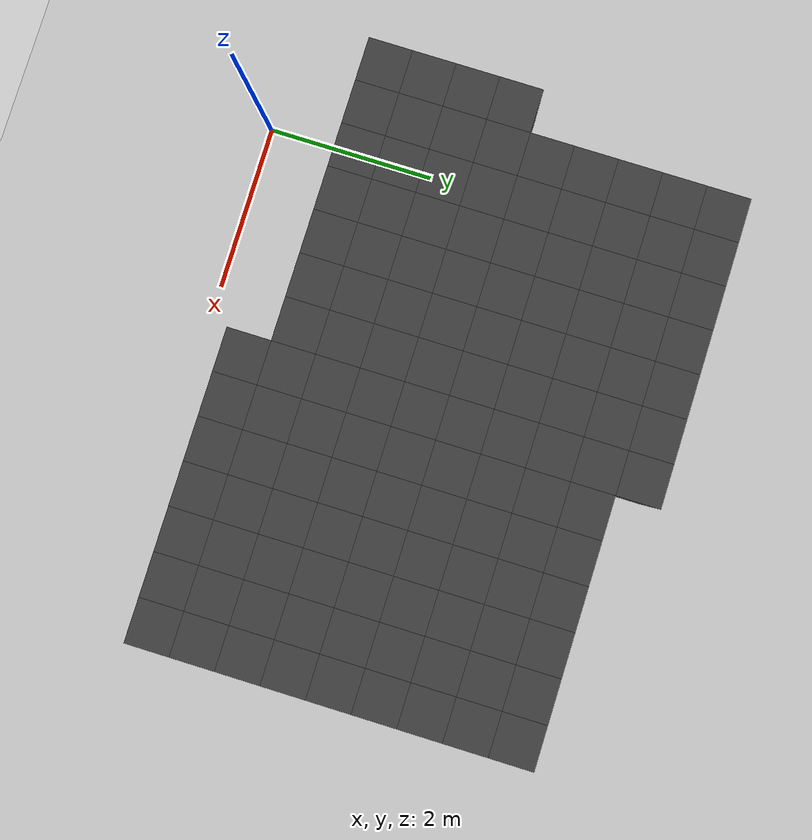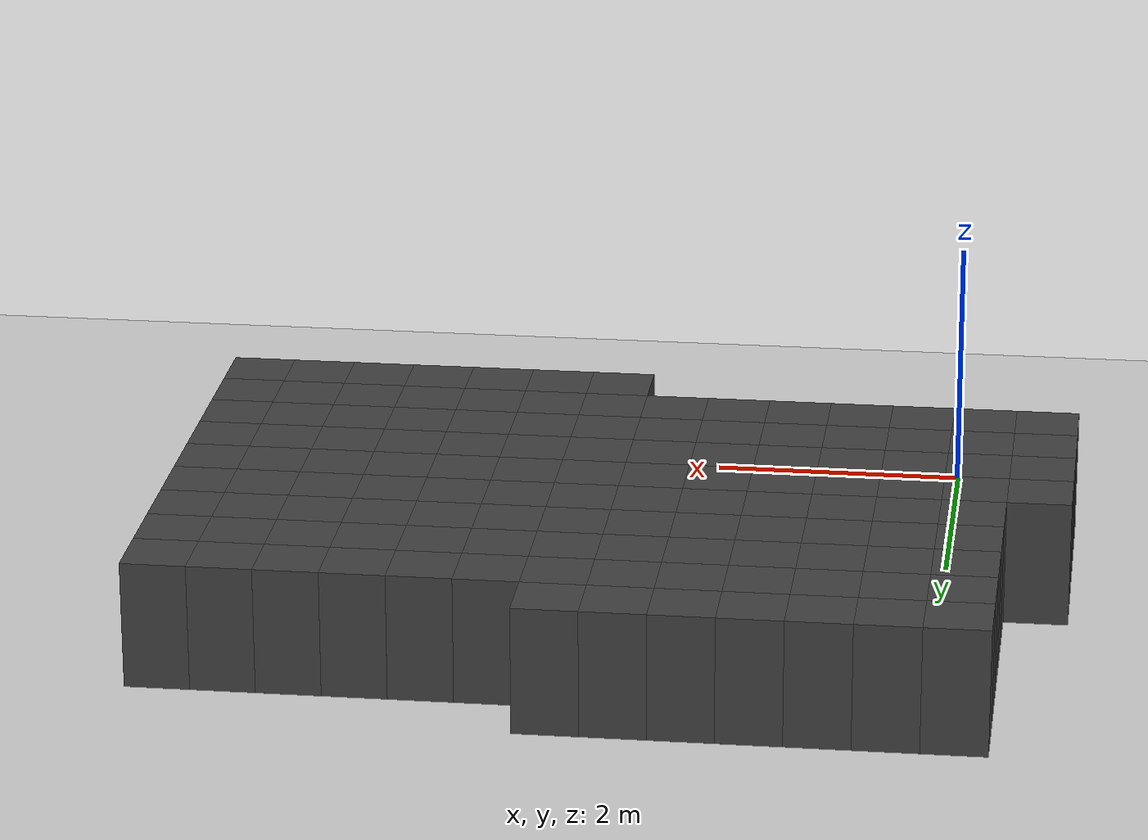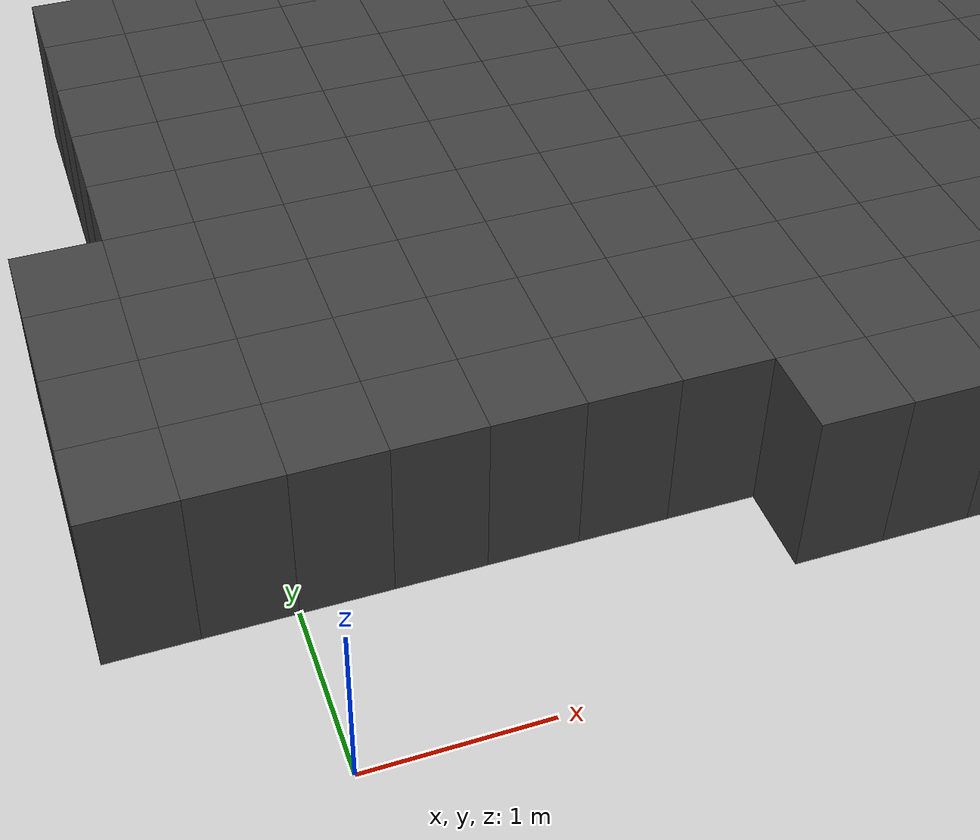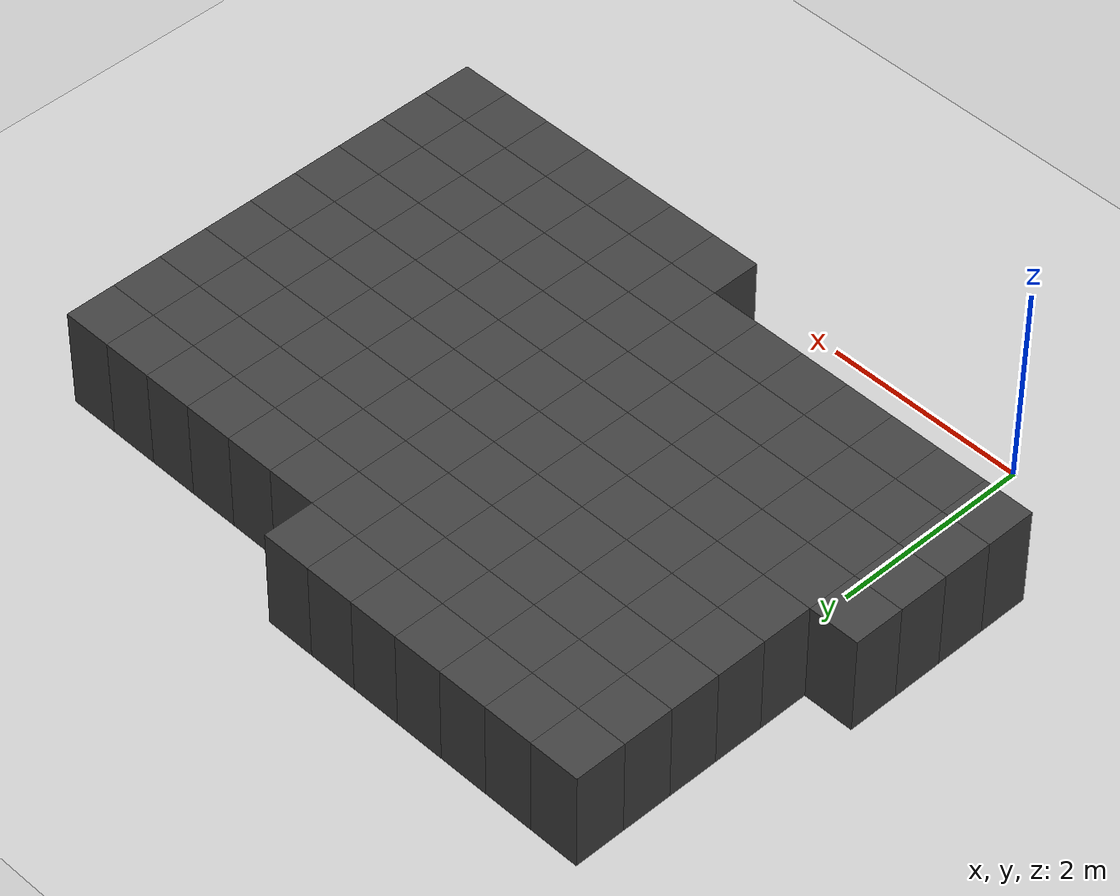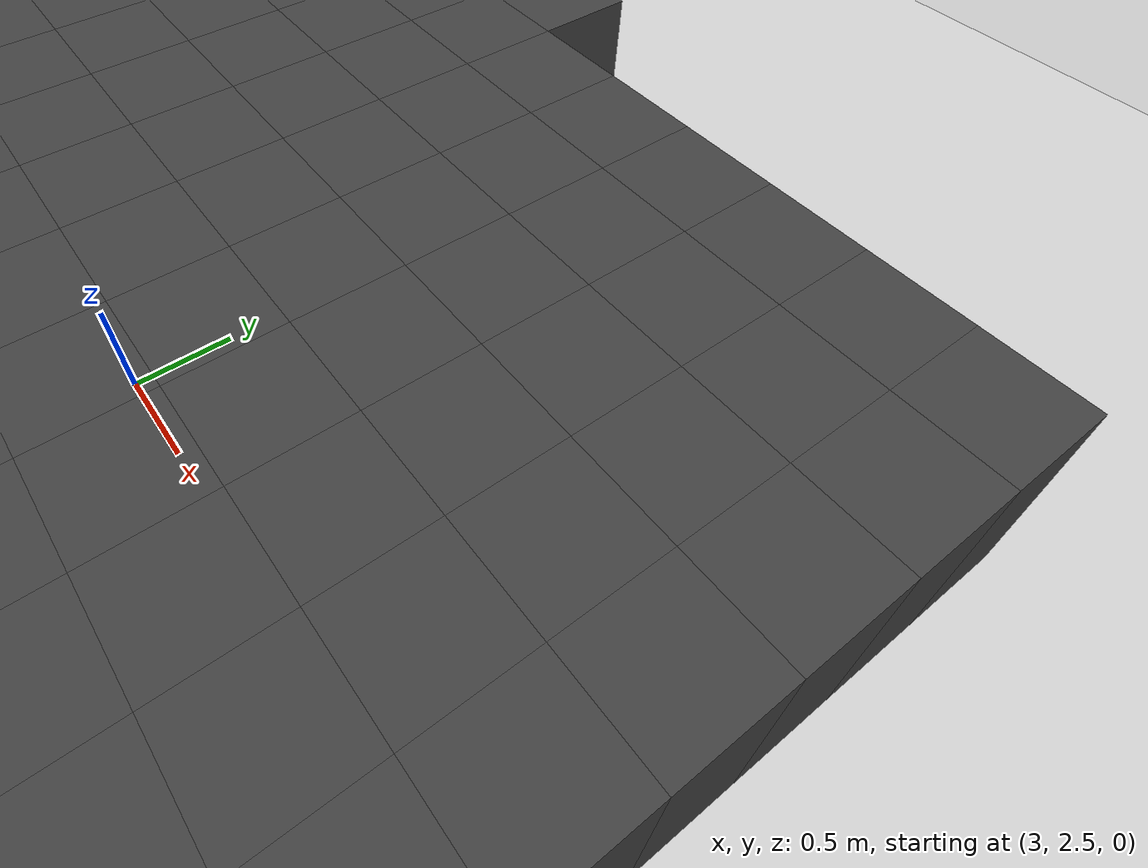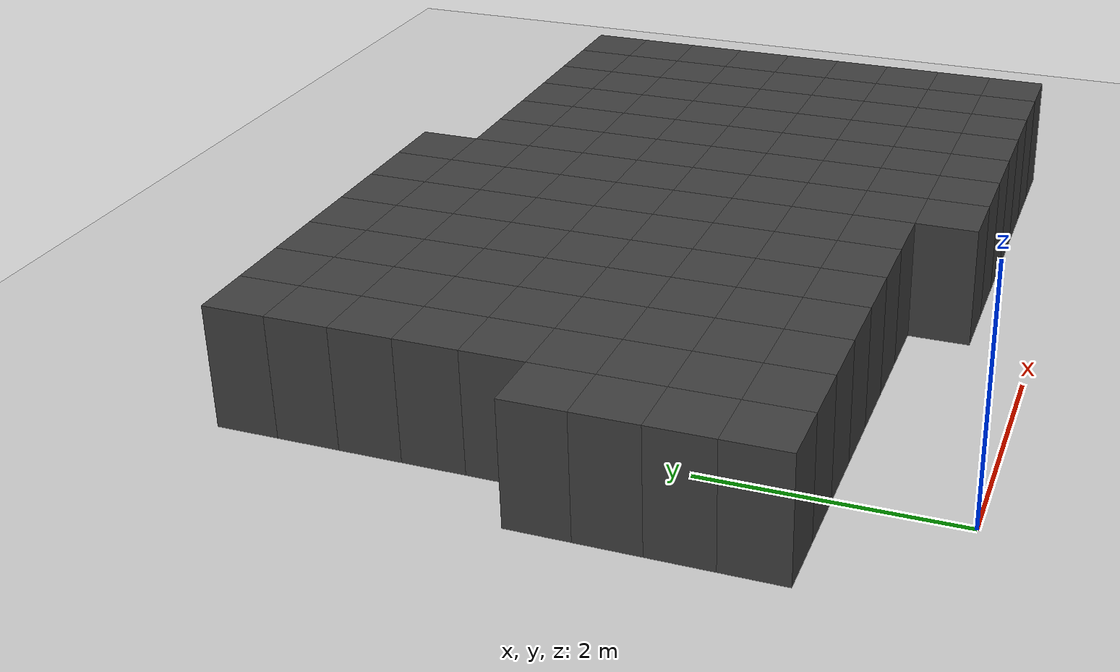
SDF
<sdf version="1.7">
 <world name="map_12885">
  <model name="ground_plane">
   <static>true</static>
   <link name="link">
    <collision name="collision">
     <geometry><plane><normal>0 0 1</normal><size>200 200</size></plane></geometry>
    </collision>
    <visual name="visual">
     <geometry><plane><normal>0 0 1</normal><size>200 200</size></plane></geometry>
     <material><ambient>0.8 0.8 0.8 1</ambient><diffuse>0.8 0.8 0.8 1</diffuse></material>
    </visual>
   </link>
  </model>
  <model name="maze_environment">
   <static>true</static>
   <link name="wall_625">
    <pose>-0.250 5.250 0.500 0 0 0</pose>
    <collision name="col"><geometry><box><size>0.5 0.5 1.0</size></box></geometry></collision>
    <visual name="vis">
     <geometry><box><size>0.5 0.5 1.0</size></box></geometry>
     <material><ambient>0.15 0.15 0.15 1</ambient><diffuse>0.25 0.25 0.25 1</diffuse></material>
    </visual>
   </link>
   <link name="wall_626">
    <pose>0.250 5.250 0.500 0 0 0</pose>
    <collision name="col"><geometry><box><size>0.5 0.5 1.0</size></box></geometry></collision>
    <visual name="vis">
     <geometry><box><size>0.5 0.5 1.0</size></box></geometry>
     <material><ambient>0.15 0.15 0.15 1</ambient><diffuse>0.25 0.25 0.25 1</diffuse></material>
    </visual>
   </link>
   <link name="wall_627">
    <pose>0.750 5.250 0.500 0 0 0</pose>
    <collision name="col"><geometry><box><size>0.5 0.5 1.0</size></box></geometry></collision>
    <visual name="vis">
     <geometry><box><size>0.5 0.5 1.0</size></box></geometry>
     <material><ambient>0.15 0.15 0.15 1</ambient><diffuse>0.25 0.25 0.25 1</diffuse></material>
    </visual>
   </link>
   <link name="wall_628">
    <pose>1.250 5.250 0.500 0 0 0</pose>
    <collision name="col"><geometry><box><size>0.5 0.5 1.0</size></box></geometry></collision>
    <visual name="vis">
     <geometry><box><size>0.5 0.5 1.0</size></box></geometry>
     <material><ambient>0.15 0.15 0.15 1</ambient><diffuse>0.25 0.25 0.25 1</diffuse></material>
    </visual>
   </link>
   <link name="wall_629">
    <pose>1.750 5.250 0.500 0 0 0</pose>
    <collision name="col"><geometry><box><size>0.5 0.5 1.0</size></box></geometry></collision>
    <visual name="vis">
     <geometry><box><size>0.5 0.5 1.0</size></box></geometry>
     <material><ambient>0.15 0.15 0.15 1</ambient><diffuse>0.25 0.25 0.25 1</diffuse></material>
    </visual>
   </link>
   <link name="wall_630">
    <pose>2.250 5.250 0.500 0 0 0</pose>
    <collision name="col"><geometry><box><size>0.5 0.5 1.0</size></box></geometry></collision>
    <visual name="vis">
     <geometry><box><size>0.5 0.5 1.0</size></box></geometry>
     <material><ambient>0.15 0.15 0.15 1</ambient><diffuse>0.25 0.25 0.25 1</diffuse></material>
    </visual>
   </link>
   <link name="wall_631">
    <pose>2.750 5.250 0.500 0 0 0</pose>
    <collision name="col"><geometry><box><size>0.5 0.5 1.0</size></box></geometry></collision>
    <visual name="vis">
     <geometry><box><size>0.5 0.5 1.0</size></box></geometry>
     <material><ambient>0.15 0.15 0.15 1</ambient><diffuse>0.25 0.25 0.25 1</diffuse></material>
    </visual>
   </link>
   <link name="wall_666">
    <pose>-0.250 4.750 0.500 0 0 0</pose>
    <collision name="col"><geometry><box><size>0.5 0.5 1.0</size></box></geometry></collision>
    <visual name="vis">
     <geometry><box><size>0.5 0.5 1.0</size></box></geometry>
     <material><ambient>0.15 0.15 0.15 1</ambient><diffuse>0.25 0.25 0.25 1</diffuse></material>
    </visual>
   </link>
   <link name="wall_667">
    <pose>0.250 4.750 0.500 0 0 0</pose>
    <collision name="col"><geometry><box><size>0.5 0.5 1.0</size></box></geometry></collision>
    <visual name="vis">
     <geometry><box><size>0.5 0.5 1.0</size></box></geometry>
     <material><ambient>0.15 0.15 0.15 1</ambient><diffuse>0.25 0.25 0.25 1</diffuse></material>
    </visual>
   </link>
   <link name="wall_668">
    <pose>0.750 4.750 0.500 0 0 0</pose>
    <collision name="col"><geometry><box><size>0.5 0.5 1.0</size></box></geometry></collision>
    <visual name="vis">
     <geometry><box><size>0.5 0.5 1.0</size></box></geometry>
     <material><ambient>0.15 0.15 0.15 1</ambient><diffuse>0.25 0.25 0.25 1</diffuse></material>
    </visual>
   </link>
   <link name="wall_669">
    <pose>1.250 4.750 0.500 0 0 0</pose>
    <collision name="col"><geometry><box><size>0.5 0.5 1.0</size></box></geometry></collision>
    <visual name="vis">
     <geometry><box><size>0.5 0.5 1.0</size></box></geometry>
     <material><ambient>0.15 0.15 0.15 1</ambient><diffuse>0.25 0.25 0.25 1</diffuse></material>
    </visual>
   </link>
   <link name="wall_670">
    <pose>1.750 4.750 0.500 0 0 0</pose>
    <collision name="col"><geometry><box><size>0.5 0.5 1.0</size></box></geometry></collision>
    <visual name="vis">
     <geometry><box><size>0.5 0.5 1.0</size></box></geometry>
     <material><ambient>0.15 0.15 0.15 1</ambient><diffuse>0.25 0.25 0.25 1</diffuse></material>
    </visual>
   </link>
   <link name="wall_671">
    <pose>2.250 4.750 0.500 0 0 0</pose>
    <collision name="col"><geometry><box><size>0.5 0.5 1.0</size></box></geometry></collision>
    <visual name="vis">
     <geometry><box><size>0.5 0.5 1.0</size></box></geometry>
     <material><ambient>0.15 0.15 0.15 1</ambient><diffuse>0.25 0.25 0.25 1</diffuse></material>
    </visual>
   </link>
   <link name="wall_672">
    <pose>2.750 4.750 0.500 0 0 0</pose>
    <collision name="col"><geometry><box><size>0.5 0.5 1.0</size></box></geometry></collision>
    <visual name="vis">
     <geometry><box><size>0.5 0.5 1.0</size></box></geometry>
     <material><ambient>0.15 0.15 0.15 1</ambient><diffuse>0.25 0.25 0.25 1</diffuse></material>
    </visual>
   </link>
   <link name="wall_673">
    <pose>3.250 4.750 0.500 0 0 0</pose>
    <collision name="col"><geometry><box><size>0.5 0.5 1.0</size></box></geometry></collision>
    <visual name="vis">
     <geometry><box><size>0.5 0.5 1.0</size></box></geometry>
     <material><ambient>0.15 0.15 0.15 1</ambient><diffuse>0.25 0.25 0.25 1</diffuse></material>
    </visual>
   </link>
   <link name="wall_674">
    <pose>3.750 4.750 0.500 0 0 0</pose>
    <collision name="col"><geometry><box><size>0.5 0.5 1.0</size></box></geometry></collision>
    <visual name="vis">
     <geometry><box><size>0.5 0.5 1.0</size></box></geometry>
     <material><ambient>0.15 0.15 0.15 1</ambient><diffuse>0.25 0.25 0.25 1</diffuse></material>
    </visual>
   </link>
   <link name="wall_675">
    <pose>4.250 4.750 0.500 0 0 0</pose>
    <collision name="col"><geometry><box><size>0.5 0.5 1.0</size></box></geometry></collision>
    <visual name="vis">
     <geometry><box><size>0.5 0.5 1.0</size></box></geometry>
     <material><ambient>0.15 0.15 0.15 1</ambient><diffuse>0.25 0.25 0.25 1</diffuse></material>
    </visual>
   </link>
   <link name="wall_676">
    <pose>4.750 4.750 0.500 0 0 0</pose>
    <collision name="col"><geometry><box><size>0.5 0.5 1.0</size></box></geometry></collision>
    <visual name="vis">
     <geometry><box><size>0.5 0.5 1.0</size></box></geometry>
     <material><ambient>0.15 0.15 0.15 1</ambient><diffuse>0.25 0.25 0.25 1</diffuse></material>
    </visual>
   </link>
   <link name="wall_677">
    <pose>5.250 4.750 0.500 0 0 0</pose>
    <collision name="col"><geometry><box><size>0.5 0.5 1.0</size></box></geometry></collision>
    <visual name="vis">
     <geometry><box><size>0.5 0.5 1.0</size></box></geometry>
     <material><ambient>0.15 0.15 0.15 1</ambient><diffuse>0.25 0.25 0.25 1</diffuse></material>
    </visual>
   </link>
   <link name="wall_678">
    <pose>5.750 4.750 0.500 0 0 0</pose>
    <collision name="col"><geometry><box><size>0.5 0.5 1.0</size></box></geometry></collision>
    <visual name="vis">
     <geometry><box><size>0.5 0.5 1.0</size></box></geometry>
     <material><ambient>0.15 0.15 0.15 1</ambient><diffuse>0.25 0.25 0.25 1</diffuse></material>
    </visual>
   </link>
   <link name="wall_707">
    <pose>-0.250 4.250 0.500 0 0 0</pose>
    <collision name="col"><geometry><box><size>0.5 0.5 1.0</size></box></geometry></collision>
    <visual name="vis">
     <geometry><box><size>0.5 0.5 1.0</size></box></geometry>
     <material><ambient>0.15 0.15 0.15 1</ambient><diffuse>0.25 0.25 0.25 1</diffuse></material>
    </visual>
   </link>
   <link name="wall_708">
    <pose>0.250 4.250 0.500 0 0 0</pose>
    <collision name="col"><geometry><box><size>0.5 0.5 1.0</size></box></geometry></collision>
    <visual name="vis">
     <geometry><box><size>0.5 0.5 1.0</size></box></geometry>
     <material><ambient>0.15 0.15 0.15 1</ambient><diffuse>0.25 0.25 0.25 1</diffuse></material>
    </visual>
   </link>
   <link name="wall_709">
    <pose>0.750 4.250 0.500 0 0 0</pose>
    <collision name="col"><geometry><box><size>0.5 0.5 1.0</size></box></geometry></collision>
    <visual name="vis">
     <geometry><box><size>0.5 0.5 1.0</size></box></geometry>
     <material><ambient>0.15 0.15 0.15 1</ambient><diffuse>0.25 0.25 0.25 1</diffuse></material>
    </visual>
   </link>
   <link name="wall_710">
    <pose>1.250 4.250 0.500 0 0 0</pose>
    <collision name="col"><geometry><box><size>0.5 0.5 1.0</size></box></geometry></collision>
    <visual name="vis">
     <geometry><box><size>0.5 0.5 1.0</size></box></geometry>
     <material><ambient>0.15 0.15 0.15 1</ambient><diffuse>0.25 0.25 0.25 1</diffuse></material>
    </visual>
   </link>
   <link name="wall_711">
    <pose>1.750 4.250 0.500 0 0 0</pose>
    <collision name="col"><geometry><box><size>0.5 0.5 1.0</size></box></geometry></collision>
    <visual name="vis">
     <geometry><box><size>0.5 0.5 1.0</size></box></geometry>
     <material><ambient>0.15 0.15 0.15 1</ambient><diffuse>0.25 0.25 0.25 1</diffuse></material>
    </visual>
   </link>
   <link name="wall_712">
    <pose>2.250 4.250 0.500 0 0 0</pose>
    <collision name="col"><geometry><box><size>0.5 0.5 1.0</size></box></geometry></collision>
    <visual name="vis">
     <geometry><box><size>0.5 0.5 1.0</size></box></geometry>
     <material><ambient>0.15 0.15 0.15 1</ambient><diffuse>0.25 0.25 0.25 1</diffuse></material>
    </visual>
   </link>
   <link name="wall_713">
    <pose>2.750 4.250 0.500 0 0 0</pose>
    <collision name="col"><geometry><box><size>0.5 0.5 1.0</size></box></geometry></collision>
    <visual name="vis">
     <geometry><box><size>0.5 0.5 1.0</size></box></geometry>
     <material><ambient>0.15 0.15 0.15 1</ambient><diffuse>0.25 0.25 0.25 1</diffuse></material>
    </visual>
   </link>
   <link name="wall_714">
    <pose>3.250 4.250 0.500 0 0 0</pose>
    <collision name="col"><geometry><box><size>0.5 0.5 1.0</size></box></geometry></collision>
    <visual name="vis">
     <geometry><box><size>0.5 0.5 1.0</size></box></geometry>
     <material><ambient>0.15 0.15 0.15 1</ambient><diffuse>0.25 0.25 0.25 1</diffuse></material>
    </visual>
   </link>
   <link name="wall_715">
    <pose>3.750 4.250 0.500 0 0 0</pose>
    <collision name="col"><geometry><box><size>0.5 0.5 1.0</size></box></geometry></collision>
    <visual name="vis">
     <geometry><box><size>0.5 0.5 1.0</size></box></geometry>
     <material><ambient>0.15 0.15 0.15 1</ambient><diffuse>0.25 0.25 0.25 1</diffuse></material>
    </visual>
   </link>
   <link name="wall_716">
    <pose>4.250 4.250 0.500 0 0 0</pose>
    <collision name="col"><geometry><box><size>0.5 0.5 1.0</size></box></geometry></collision>
    <visual name="vis">
     <geometry><box><size>0.5 0.5 1.0</size></box></geometry>
     <material><ambient>0.15 0.15 0.15 1</ambient><diffuse>0.25 0.25 0.25 1</diffuse></material>
    </visual>
   </link>
   <link name="wall_717">
    <pose>4.750 4.250 0.500 0 0 0</pose>
    <collision name="col"><geometry><box><size>0.5 0.5 1.0</size></box></geometry></collision>
    <visual name="vis">
     <geometry><box><size>0.5 0.5 1.0</size></box></geometry>
     <material><ambient>0.15 0.15 0.15 1</ambient><diffuse>0.25 0.25 0.25 1</diffuse></material>
    </visual>
   </link>
   <link name="wall_718">
    <pose>5.250 4.250 0.500 0 0 0</pose>
    <collision name="col"><geometry><box><size>0.5 0.5 1.0</size></box></geometry></collision>
    <visual name="vis">
     <geometry><box><size>0.5 0.5 1.0</size></box></geometry>
     <material><ambient>0.15 0.15 0.15 1</ambient><diffuse>0.25 0.25 0.25 1</diffuse></material>
    </visual>
   </link>
   <link name="wall_719">
    <pose>5.750 4.250 0.500 0 0 0</pose>
    <collision name="col"><geometry><box><size>0.5 0.5 1.0</size></box></geometry></collision>
    <visual name="vis">
     <geometry><box><size>0.5 0.5 1.0</size></box></geometry>
     <material><ambient>0.15 0.15 0.15 1</ambient><diffuse>0.25 0.25 0.25 1</diffuse></material>
    </visual>
   </link>
   <link name="wall_748">
    <pose>-0.250 3.750 0.500 0 0 0</pose>
    <collision name="col"><geometry><box><size>0.5 0.5 1.0</size></box></geometry></collision>
    <visual name="vis">
     <geometry><box><size>0.5 0.5 1.0</size></box></geometry>
     <material><ambient>0.15 0.15 0.15 1</ambient><diffuse>0.25 0.25 0.25 1</diffuse></material>
    </visual>
   </link>
   <link name="wall_749">
    <pose>0.250 3.750 0.500 0 0 0</pose>
    <collision name="col"><geometry><box><size>0.5 0.5 1.0</size></box></geometry></collision>
    <visual name="vis">
     <geometry><box><size>0.5 0.5 1.0</size></box></geometry>
     <material><ambient>0.15 0.15 0.15 1</ambient><diffuse>0.25 0.25 0.25 1</diffuse></material>
    </visual>
   </link>
   <link name="wall_750">
    <pose>0.750 3.750 0.500 0 0 0</pose>
    <collision name="col"><geometry><box><size>0.5 0.5 1.0</size></box></geometry></collision>
    <visual name="vis">
     <geometry><box><size>0.5 0.5 1.0</size></box></geometry>
     <material><ambient>0.15 0.15 0.15 1</ambient><diffuse>0.25 0.25 0.25 1</diffuse></material>
    </visual>
   </link>
   <link name="wall_751">
    <pose>1.250 3.750 0.500 0 0 0</pose>
    <collision name="col"><geometry><box><size>0.5 0.5 1.0</size></box></geometry></collision>
    <visual name="vis">
     <geometry><box><size>0.5 0.5 1.0</size></box></geometry>
     <material><ambient>0.15 0.15 0.15 1</ambient><diffuse>0.25 0.25 0.25 1</diffuse></material>
    </visual>
   </link>
   <link name="wall_752">
    <pose>1.750 3.750 0.500 0 0 0</pose>
    <collision name="col"><geometry><box><size>0.5 0.5 1.0</size></box></geometry></collision>
    <visual name="vis">
     <geometry><box><size>0.5 0.5 1.0</size></box></geometry>
     <material><ambient>0.15 0.15 0.15 1</ambient><diffuse>0.25 0.25 0.25 1</diffuse></material>
    </visual>
   </link>
   <link name="wall_753">
    <pose>2.250 3.750 0.500 0 0 0</pose>
    <collision name="col"><geometry><box><size>0.5 0.5 1.0</size></box></geometry></collision>
    <visual name="vis">
     <geometry><box><size>0.5 0.5 1.0</size></box></geometry>
     <material><ambient>0.15 0.15 0.15 1</ambient><diffuse>0.25 0.25 0.25 1</diffuse></material>
    </visual>
   </link>
   <link name="wall_754">
    <pose>2.750 3.750 0.500 0 0 0</pose>
    <collision name="col"><geometry><box><size>0.5 0.5 1.0</size></box></geometry></collision>
    <visual name="vis">
     <geometry><box><size>0.5 0.5 1.0</size></box></geometry>
     <material><ambient>0.15 0.15 0.15 1</ambient><diffuse>0.25 0.25 0.25 1</diffuse></material>
    </visual>
   </link>
   <link name="wall_755">
    <pose>3.250 3.750 0.500 0 0 0</pose>
    <collision name="col"><geometry><box><size>0.5 0.5 1.0</size></box></geometry></collision>
    <visual name="vis">
     <geometry><box><size>0.5 0.5 1.0</size></box></geometry>
     <material><ambient>0.15 0.15 0.15 1</ambient><diffuse>0.25 0.25 0.25 1</diffuse></material>
    </visual>
   </link>
   <link name="wall_756">
    <pose>3.750 3.750 0.500 0 0 0</pose>
    <collision name="col"><geometry><box><size>0.5 0.5 1.0</size></box></geometry></collision>
    <visual name="vis">
     <geometry><box><size>0.5 0.5 1.0</size></box></geometry>
     <material><ambient>0.15 0.15 0.15 1</ambient><diffuse>0.25 0.25 0.25 1</diffuse></material>
    </visual>
   </link>
   <link name="wall_757">
    <pose>4.250 3.750 0.500 0 0 0</pose>
    <collision name="col"><geometry><box><size>0.5 0.5 1.0</size></box></geometry></collision>
    <visual name="vis">
     <geometry><box><size>0.5 0.5 1.0</size></box></geometry>
     <material><ambient>0.15 0.15 0.15 1</ambient><diffuse>0.25 0.25 0.25 1</diffuse></material>
    </visual>
   </link>
   <link name="wall_758">
    <pose>4.750 3.750 0.500 0 0 0</pose>
    <collision name="col"><geometry><box><size>0.5 0.5 1.0</size></box></geometry></collision>
    <visual name="vis">
     <geometry><box><size>0.5 0.5 1.0</size></box></geometry>
     <material><ambient>0.15 0.15 0.15 1</ambient><diffuse>0.25 0.25 0.25 1</diffuse></material>
    </visual>
   </link>
   <link name="wall_759">
    <pose>5.250 3.750 0.500 0 0 0</pose>
    <collision name="col"><geometry><box><size>0.5 0.5 1.0</size></box></geometry></collision>
    <visual name="vis">
     <geometry><box><size>0.5 0.5 1.0</size></box></geometry>
     <material><ambient>0.15 0.15 0.15 1</ambient><diffuse>0.25 0.25 0.25 1</diffuse></material>
    </visual>
   </link>
   <link name="wall_760">
    <pose>5.750 3.750 0.500 0 0 0</pose>
    <collision name="col"><geometry><box><size>0.5 0.5 1.0</size></box></geometry></collision>
    <visual name="vis">
     <geometry><box><size>0.5 0.5 1.0</size></box></geometry>
     <material><ambient>0.15 0.15 0.15 1</ambient><diffuse>0.25 0.25 0.25 1</diffuse></material>
    </visual>
   </link>
   <link name="wall_789">
    <pose>-0.250 3.250 0.500 0 0 0</pose>
    <collision name="col"><geometry><box><size>0.5 0.5 1.0</size></box></geometry></collision>
    <visual name="vis">
     <geometry><box><size>0.5 0.5 1.0</size></box></geometry>
     <material><ambient>0.15 0.15 0.15 1</ambient><diffuse>0.25 0.25 0.25 1</diffuse></material>
    </visual>
   </link>
   <link name="wall_790">
    <pose>0.250 3.250 0.500 0 0 0</pose>
    <collision name="col"><geometry><box><size>0.5 0.5 1.0</size></box></geometry></collision>
    <visual name="vis">
     <geometry><box><size>0.5 0.5 1.0</size></box></geometry>
     <material><ambient>0.15 0.15 0.15 1</ambient><diffuse>0.25 0.25 0.25 1</diffuse></material>
    </visual>
   </link>
   <link name="wall_791">
    <pose>0.750 3.250 0.500 0 0 0</pose>
    <collision name="col"><geometry><box><size>0.5 0.5 1.0</size></box></geometry></collision>
    <visual name="vis">
     <geometry><box><size>0.5 0.5 1.0</size></box></geometry>
     <material><ambient>0.15 0.15 0.15 1</ambient><diffuse>0.25 0.25 0.25 1</diffuse></material>
    </visual>
   </link>
   <link name="wall_792">
    <pose>1.250 3.250 0.500 0 0 0</pose>
    <collision name="col"><geometry><box><size>0.5 0.5 1.0</size></box></geometry></collision>
    <visual name="vis">
     <geometry><box><size>0.5 0.5 1.0</size></box></geometry>
     <material><ambient>0.15 0.15 0.15 1</ambient><diffuse>0.25 0.25 0.25 1</diffuse></material>
    </visual>
   </link>
   <link name="wall_793">
    <pose>1.750 3.250 0.500 0 0 0</pose>
    <collision name="col"><geometry><box><size>0.5 0.5 1.0</size></box></geometry></collision>
    <visual name="vis">
     <geometry><box><size>0.5 0.5 1.0</size></box></geometry>
     <material><ambient>0.15 0.15 0.15 1</ambient><diffuse>0.25 0.25 0.25 1</diffuse></material>
    </visual>
   </link>
   <link name="wall_794">
    <pose>2.250 3.250 0.500 0 0 0</pose>
    <collision name="col"><geometry><box><size>0.5 0.5 1.0</size></box></geometry></collision>
    <visual name="vis">
     <geometry><box><size>0.5 0.5 1.0</size></box></geometry>
     <material><ambient>0.15 0.15 0.15 1</ambient><diffuse>0.25 0.25 0.25 1</diffuse></material>
    </visual>
   </link>
   <link name="wall_795">
    <pose>2.750 3.250 0.500 0 0 0</pose>
    <collision name="col"><geometry><box><size>0.5 0.5 1.0</size></box></geometry></collision>
    <visual name="vis">
     <geometry><box><size>0.5 0.5 1.0</size></box></geometry>
     <material><ambient>0.15 0.15 0.15 1</ambient><diffuse>0.25 0.25 0.25 1</diffuse></material>
    </visual>
   </link>
   <link name="wall_796">
    <pose>3.250 3.250 0.500 0 0 0</pose>
    <collision name="col"><geometry><box><size>0.5 0.5 1.0</size></box></geometry></collision>
    <visual name="vis">
     <geometry><box><size>0.5 0.5 1.0</size></box></geometry>
     <material><ambient>0.15 0.15 0.15 1</ambient><diffuse>0.25 0.25 0.25 1</diffuse></material>
    </visual>
   </link>
   <link name="wall_797">
    <pose>3.750 3.250 0.500 0 0 0</pose>
    <collision name="col"><geometry><box><size>0.5 0.5 1.0</size></box></geometry></collision>
    <visual name="vis">
     <geometry><box><size>0.5 0.5 1.0</size></box></geometry>
     <material><ambient>0.15 0.15 0.15 1</ambient><diffuse>0.25 0.25 0.25 1</diffuse></material>
    </visual>
   </link>
   <link name="wall_798">
    <pose>4.250 3.250 0.500 0 0 0</pose>
    <collision name="col"><geometry><box><size>0.5 0.5 1.0</size></box></geometry></collision>
    <visual name="vis">
     <geometry><box><size>0.5 0.5 1.0</size></box></geometry>
     <material><ambient>0.15 0.15 0.15 1</ambient><diffuse>0.25 0.25 0.25 1</diffuse></material>
    </visual>
   </link>
   <link name="wall_799">
    <pose>4.750 3.250 0.500 0 0 0</pose>
    <collision name="col"><geometry><box><size>0.5 0.5 1.0</size></box></geometry></collision>
    <visual name="vis">
     <geometry><box><size>0.5 0.5 1.0</size></box></geometry>
     <material><ambient>0.15 0.15 0.15 1</ambient><diffuse>0.25 0.25 0.25 1</diffuse></material>
    </visual>
   </link>
   <link name="wall_800">
    <pose>5.250 3.250 0.500 0 0 0</pose>
    <collision name="col"><geometry><box><size>0.5 0.5 1.0</size></box></geometry></collision>
    <visual name="vis">
     <geometry><box><size>0.5 0.5 1.0</size></box></geometry>
     <material><ambient>0.15 0.15 0.15 1</ambient><diffuse>0.25 0.25 0.25 1</diffuse></material>
    </visual>
   </link>
   <link name="wall_801">
    <pose>5.750 3.250 0.500 0 0 0</pose>
    <collision name="col"><geometry><box><size>0.5 0.5 1.0</size></box></geometry></collision>
    <visual name="vis">
     <geometry><box><size>0.5 0.5 1.0</size></box></geometry>
     <material><ambient>0.15 0.15 0.15 1</ambient><diffuse>0.25 0.25 0.25 1</diffuse></material>
    </visual>
   </link>
   <link name="wall_829">
    <pose>-0.750 2.750 0.500 0 0 0</pose>
    <collision name="col"><geometry><box><size>0.5 0.5 1.0</size></box></geometry></collision>
    <visual name="vis">
     <geometry><box><size>0.5 0.5 1.0</size></box></geometry>
     <material><ambient>0.15 0.15 0.15 1</ambient><diffuse>0.25 0.25 0.25 1</diffuse></material>
    </visual>
   </link>
   <link name="wall_830">
    <pose>-0.250 2.750 0.500 0 0 0</pose>
    <collision name="col"><geometry><box><size>0.5 0.5 1.0</size></box></geometry></collision>
    <visual name="vis">
     <geometry><box><size>0.5 0.5 1.0</size></box></geometry>
     <material><ambient>0.15 0.15 0.15 1</ambient><diffuse>0.25 0.25 0.25 1</diffuse></material>
    </visual>
   </link>
   <link name="wall_831">
    <pose>0.250 2.750 0.500 0 0 0</pose>
    <collision name="col"><geometry><box><size>0.5 0.5 1.0</size></box></geometry></collision>
    <visual name="vis">
     <geometry><box><size>0.5 0.5 1.0</size></box></geometry>
     <material><ambient>0.15 0.15 0.15 1</ambient><diffuse>0.25 0.25 0.25 1</diffuse></material>
    </visual>
   </link>
   <link name="wall_832">
    <pose>0.750 2.750 0.500 0 0 0</pose>
    <collision name="col"><geometry><box><size>0.5 0.5 1.0</size></box></geometry></collision>
    <visual name="vis">
     <geometry><box><size>0.5 0.5 1.0</size></box></geometry>
     <material><ambient>0.15 0.15 0.15 1</ambient><diffuse>0.25 0.25 0.25 1</diffuse></material>
    </visual>
   </link>
   <link name="wall_833">
    <pose>1.250 2.750 0.500 0 0 0</pose>
    <collision name="col"><geometry><box><size>0.5 0.5 1.0</size></box></geometry></collision>
    <visual name="vis">
     <geometry><box><size>0.5 0.5 1.0</size></box></geometry>
     <material><ambient>0.15 0.15 0.15 1</ambient><diffuse>0.25 0.25 0.25 1</diffuse></material>
    </visual>
   </link>
   <link name="wall_834">
    <pose>1.750 2.750 0.500 0 0 0</pose>
    <collision name="col"><geometry><box><size>0.5 0.5 1.0</size></box></geometry></collision>
    <visual name="vis">
     <geometry><box><size>0.5 0.5 1.0</size></box></geometry>
     <material><ambient>0.15 0.15 0.15 1</ambient><diffuse>0.25 0.25 0.25 1</diffuse></material>
    </visual>
   </link>
   <link name="wall_835">
    <pose>2.250 2.750 0.500 0 0 0</pose>
    <collision name="col"><geometry><box><size>0.5 0.5 1.0</size></box></geometry></collision>
    <visual name="vis">
     <geometry><box><size>0.5 0.5 1.0</size></box></geometry>
     <material><ambient>0.15 0.15 0.15 1</ambient><diffuse>0.25 0.25 0.25 1</diffuse></material>
    </visual>
   </link>
   <link name="wall_836">
    <pose>2.750 2.750 0.500 0 0 0</pose>
    <collision name="col"><geometry><box><size>0.5 0.5 1.0</size></box></geometry></collision>
    <visual name="vis">
     <geometry><box><size>0.5 0.5 1.0</size></box></geometry>
     <material><ambient>0.15 0.15 0.15 1</ambient><diffuse>0.25 0.25 0.25 1</diffuse></material>
    </visual>
   </link>
   <link name="wall_837">
    <pose>3.250 2.750 0.500 0 0 0</pose>
    <collision name="col"><geometry><box><size>0.5 0.5 1.0</size></box></geometry></collision>
    <visual name="vis">
     <geometry><box><size>0.5 0.5 1.0</size></box></geometry>
     <material><ambient>0.15 0.15 0.15 1</ambient><diffuse>0.25 0.25 0.25 1</diffuse></material>
    </visual>
   </link>
   <link name="wall_838">
    <pose>3.750 2.750 0.500 0 0 0</pose>
    <collision name="col"><geometry><box><size>0.5 0.5 1.0</size></box></geometry></collision>
    <visual name="vis">
     <geometry><box><size>0.5 0.5 1.0</size></box></geometry>
     <material><ambient>0.15 0.15 0.15 1</ambient><diffuse>0.25 0.25 0.25 1</diffuse></material>
    </visual>
   </link>
   <link name="wall_839">
    <pose>4.250 2.750 0.500 0 0 0</pose>
    <collision name="col"><geometry><box><size>0.5 0.5 1.0</size></box></geometry></collision>
    <visual name="vis">
     <geometry><box><size>0.5 0.5 1.0</size></box></geometry>
     <material><ambient>0.15 0.15 0.15 1</ambient><diffuse>0.25 0.25 0.25 1</diffuse></material>
    </visual>
   </link>
   <link name="wall_840">
    <pose>4.750 2.750 0.500 0 0 0</pose>
    <collision name="col"><geometry><box><size>0.5 0.5 1.0</size></box></geometry></collision>
    <visual name="vis">
     <geometry><box><size>0.5 0.5 1.0</size></box></geometry>
     <material><ambient>0.15 0.15 0.15 1</ambient><diffuse>0.25 0.25 0.25 1</diffuse></material>
    </visual>
   </link>
   <link name="wall_841">
    <pose>5.250 2.750 0.500 0 0 0</pose>
    <collision name="col"><geometry><box><size>0.5 0.5 1.0</size></box></geometry></collision>
    <visual name="vis">
     <geometry><box><size>0.5 0.5 1.0</size></box></geometry>
     <material><ambient>0.15 0.15 0.15 1</ambient><diffuse>0.25 0.25 0.25 1</diffuse></material>
    </visual>
   </link>
   <link name="wall_842">
    <pose>5.750 2.750 0.500 0 0 0</pose>
    <collision name="col"><geometry><box><size>0.5 0.5 1.0</size></box></geometry></collision>
    <visual name="vis">
     <geometry><box><size>0.5 0.5 1.0</size></box></geometry>
     <material><ambient>0.15 0.15 0.15 1</ambient><diffuse>0.25 0.25 0.25 1</diffuse></material>
    </visual>
   </link>
   <link name="wall_864">
    <pose>-0.750 2.250 0.500 0 0 0</pose>
    <collision name="col"><geometry><box><size>0.5 0.5 1.0</size></box></geometry></collision>
    <visual name="vis">
     <geometry><box><size>0.5 0.5 1.0</size></box></geometry>
     <material><ambient>0.15 0.15 0.15 1</ambient><diffuse>0.25 0.25 0.25 1</diffuse></material>
    </visual>
   </link>
   <link name="wall_865">
    <pose>-0.250 2.250 0.500 0 0 0</pose>
    <collision name="col"><geometry><box><size>0.5 0.5 1.0</size></box></geometry></collision>
    <visual name="vis">
     <geometry><box><size>0.5 0.5 1.0</size></box></geometry>
     <material><ambient>0.15 0.15 0.15 1</ambient><diffuse>0.25 0.25 0.25 1</diffuse></material>
    </visual>
   </link>
   <link name="wall_866">
    <pose>0.250 2.250 0.500 0 0 0</pose>
    <collision name="col"><geometry><box><size>0.5 0.5 1.0</size></box></geometry></collision>
    <visual name="vis">
     <geometry><box><size>0.5 0.5 1.0</size></box></geometry>
     <material><ambient>0.15 0.15 0.15 1</ambient><diffuse>0.25 0.25 0.25 1</diffuse></material>
    </visual>
   </link>
   <link name="wall_867">
    <pose>0.750 2.250 0.500 0 0 0</pose>
    <collision name="col"><geometry><box><size>0.5 0.5 1.0</size></box></geometry></collision>
    <visual name="vis">
     <geometry><box><size>0.5 0.5 1.0</size></box></geometry>
     <material><ambient>0.15 0.15 0.15 1</ambient><diffuse>0.25 0.25 0.25 1</diffuse></material>
    </visual>
   </link>
   <link name="wall_868">
    <pose>1.250 2.250 0.500 0 0 0</pose>
    <collision name="col"><geometry><box><size>0.5 0.5 1.0</size></box></geometry></collision>
    <visual name="vis">
     <geometry><box><size>0.5 0.5 1.0</size></box></geometry>
     <material><ambient>0.15 0.15 0.15 1</ambient><diffuse>0.25 0.25 0.25 1</diffuse></material>
    </visual>
   </link>
   <link name="wall_869">
    <pose>1.750 2.250 0.500 0 0 0</pose>
    <collision name="col"><geometry><box><size>0.5 0.5 1.0</size></box></geometry></collision>
    <visual name="vis">
     <geometry><box><size>0.5 0.5 1.0</size></box></geometry>
     <material><ambient>0.15 0.15 0.15 1</ambient><diffuse>0.25 0.25 0.25 1</diffuse></material>
    </visual>
   </link>
   <link name="wall_870">
    <pose>2.250 2.250 0.500 0 0 0</pose>
    <collision name="col"><geometry><box><size>0.5 0.5 1.0</size></box></geometry></collision>
    <visual name="vis">
     <geometry><box><size>0.5 0.5 1.0</size></box></geometry>
     <material><ambient>0.15 0.15 0.15 1</ambient><diffuse>0.25 0.25 0.25 1</diffuse></material>
    </visual>
   </link>
   <link name="wall_871">
    <pose>2.750 2.250 0.500 0 0 0</pose>
    <collision name="col"><geometry><box><size>0.5 0.5 1.0</size></box></geometry></collision>
    <visual name="vis">
     <geometry><box><size>0.5 0.5 1.0</size></box></geometry>
     <material><ambient>0.15 0.15 0.15 1</ambient><diffuse>0.25 0.25 0.25 1</diffuse></material>
    </visual>
   </link>
   <link name="wall_872">
    <pose>3.250 2.250 0.500 0 0 0</pose>
    <collision name="col"><geometry><box><size>0.5 0.5 1.0</size></box></geometry></collision>
    <visual name="vis">
     <geometry><box><size>0.5 0.5 1.0</size></box></geometry>
     <material><ambient>0.15 0.15 0.15 1</ambient><diffuse>0.25 0.25 0.25 1</diffuse></material>
    </visual>
   </link>
   <link name="wall_873">
    <pose>3.750 2.250 0.500 0 0 0</pose>
    <collision name="col"><geometry><box><size>0.5 0.5 1.0</size></box></geometry></collision>
    <visual name="vis">
     <geometry><box><size>0.5 0.5 1.0</size></box></geometry>
     <material><ambient>0.15 0.15 0.15 1</ambient><diffuse>0.25 0.25 0.25 1</diffuse></material>
    </visual>
   </link>
   <link name="wall_874">
    <pose>4.250 2.250 0.500 0 0 0</pose>
    <collision name="col"><geometry><box><size>0.5 0.5 1.0</size></box></geometry></collision>
    <visual name="vis">
     <geometry><box><size>0.5 0.5 1.0</size></box></geometry>
     <material><ambient>0.15 0.15 0.15 1</ambient><diffuse>0.25 0.25 0.25 1</diffuse></material>
    </visual>
   </link>
   <link name="wall_875">
    <pose>4.750 2.250 0.500 0 0 0</pose>
    <collision name="col"><geometry><box><size>0.5 0.5 1.0</size></box></geometry></collision>
    <visual name="vis">
     <geometry><box><size>0.5 0.5 1.0</size></box></geometry>
     <material><ambient>0.15 0.15 0.15 1</ambient><diffuse>0.25 0.25 0.25 1</diffuse></material>
    </visual>
   </link>
   <link name="wall_876">
    <pose>5.250 2.250 0.500 0 0 0</pose>
    <collision name="col"><geometry><box><size>0.5 0.5 1.0</size></box></geometry></collision>
    <visual name="vis">
     <geometry><box><size>0.5 0.5 1.0</size></box></geometry>
     <material><ambient>0.15 0.15 0.15 1</ambient><diffuse>0.25 0.25 0.25 1</diffuse></material>
    </visual>
   </link>
   <link name="wall_877">
    <pose>5.750 2.250 0.500 0 0 0</pose>
    <collision name="col"><geometry><box><size>0.5 0.5 1.0</size></box></geometry></collision>
    <visual name="vis">
     <geometry><box><size>0.5 0.5 1.0</size></box></geometry>
     <material><ambient>0.15 0.15 0.15 1</ambient><diffuse>0.25 0.25 0.25 1</diffuse></material>
    </visual>
   </link>
   <link name="wall_906">
    <pose>-0.750 1.750 0.500 0 0 0</pose>
    <collision name="col"><geometry><box><size>0.5 0.5 1.0</size></box></geometry></collision>
    <visual name="vis">
     <geometry><box><size>0.5 0.5 1.0</size></box></geometry>
     <material><ambient>0.15 0.15 0.15 1</ambient><diffuse>0.25 0.25 0.25 1</diffuse></material>
    </visual>
   </link>
   <link name="wall_907">
    <pose>-0.250 1.750 0.500 0 0 0</pose>
    <collision name="col"><geometry><box><size>0.5 0.5 1.0</size></box></geometry></collision>
    <visual name="vis">
     <geometry><box><size>0.5 0.5 1.0</size></box></geometry>
     <material><ambient>0.15 0.15 0.15 1</ambient><diffuse>0.25 0.25 0.25 1</diffuse></material>
    </visual>
   </link>
   <link name="wall_908">
    <pose>0.250 1.750 0.500 0 0 0</pose>
    <collision name="col"><geometry><box><size>0.5 0.5 1.0</size></box></geometry></collision>
    <visual name="vis">
     <geometry><box><size>0.5 0.5 1.0</size></box></geometry>
     <material><ambient>0.15 0.15 0.15 1</ambient><diffuse>0.25 0.25 0.25 1</diffuse></material>
    </visual>
   </link>
   <link name="wall_909">
    <pose>0.750 1.750 0.500 0 0 0</pose>
    <collision name="col"><geometry><box><size>0.5 0.5 1.0</size></box></geometry></collision>
    <visual name="vis">
     <geometry><box><size>0.5 0.5 1.0</size></box></geometry>
     <material><ambient>0.15 0.15 0.15 1</ambient><diffuse>0.25 0.25 0.25 1</diffuse></material>
    </visual>
   </link>
   <link name="wall_910">
    <pose>1.250 1.750 0.500 0 0 0</pose>
    <collision name="col"><geometry><box><size>0.5 0.5 1.0</size></box></geometry></collision>
    <visual name="vis">
     <geometry><box><size>0.5 0.5 1.0</size></box></geometry>
     <material><ambient>0.15 0.15 0.15 1</ambient><diffuse>0.25 0.25 0.25 1</diffuse></material>
    </visual>
   </link>
   <link name="wall_911">
    <pose>1.750 1.750 0.500 0 0 0</pose>
    <collision name="col"><geometry><box><size>0.5 0.5 1.0</size></box></geometry></collision>
    <visual name="vis">
     <geometry><box><size>0.5 0.5 1.0</size></box></geometry>
     <material><ambient>0.15 0.15 0.15 1</ambient><diffuse>0.25 0.25 0.25 1</diffuse></material>
    </visual>
   </link>
   <link name="wall_912">
    <pose>2.250 1.750 0.500 0 0 0</pose>
    <collision name="col"><geometry><box><size>0.5 0.5 1.0</size></box></geometry></collision>
    <visual name="vis">
     <geometry><box><size>0.5 0.5 1.0</size></box></geometry>
     <material><ambient>0.15 0.15 0.15 1</ambient><diffuse>0.25 0.25 0.25 1</diffuse></material>
    </visual>
   </link>
   <link name="wall_913">
    <pose>2.750 1.750 0.500 0 0 0</pose>
    <collision name="col"><geometry><box><size>0.5 0.5 1.0</size></box></geometry></collision>
    <visual name="vis">
     <geometry><box><size>0.5 0.5 1.0</size></box></geometry>
     <material><ambient>0.15 0.15 0.15 1</ambient><diffuse>0.25 0.25 0.25 1</diffuse></material>
    </visual>
   </link>
   <link name="wall_914">
    <pose>3.250 1.750 0.500 0 0 0</pose>
    <collision name="col"><geometry><box><size>0.5 0.5 1.0</size></box></geometry></collision>
    <visual name="vis">
     <geometry><box><size>0.5 0.5 1.0</size></box></geometry>
     <material><ambient>0.15 0.15 0.15 1</ambient><diffuse>0.25 0.25 0.25 1</diffuse></material>
    </visual>
   </link>
   <link name="wall_915">
    <pose>3.750 1.750 0.500 0 0 0</pose>
    <collision name="col"><geometry><box><size>0.5 0.5 1.0</size></box></geometry></collision>
    <visual name="vis">
     <geometry><box><size>0.5 0.5 1.0</size></box></geometry>
     <material><ambient>0.15 0.15 0.15 1</ambient><diffuse>0.25 0.25 0.25 1</diffuse></material>
    </visual>
   </link>
   <link name="wall_916">
    <pose>4.250 1.750 0.500 0 0 0</pose>
    <collision name="col"><geometry><box><size>0.5 0.5 1.0</size></box></geometry></collision>
    <visual name="vis">
     <geometry><box><size>0.5 0.5 1.0</size></box></geometry>
     <material><ambient>0.15 0.15 0.15 1</ambient><diffuse>0.25 0.25 0.25 1</diffuse></material>
    </visual>
   </link>
   <link name="wall_917">
    <pose>4.750 1.750 0.500 0 0 0</pose>
    <collision name="col"><geometry><box><size>0.5 0.5 1.0</size></box></geometry></collision>
    <visual name="vis">
     <geometry><box><size>0.5 0.5 1.0</size></box></geometry>
     <material><ambient>0.15 0.15 0.15 1</ambient><diffuse>0.25 0.25 0.25 1</diffuse></material>
    </visual>
   </link>
   <link name="wall_918">
    <pose>5.250 1.750 0.500 0 0 0</pose>
    <collision name="col"><geometry><box><size>0.5 0.5 1.0</size></box></geometry></collision>
    <visual name="vis">
     <geometry><box><size>0.5 0.5 1.0</size></box></geometry>
     <material><ambient>0.15 0.15 0.15 1</ambient><diffuse>0.25 0.25 0.25 1</diffuse></material>
    </visual>
   </link>
   <link name="wall_919">
    <pose>5.750 1.750 0.500 0 0 0</pose>
    <collision name="col"><geometry><box><size>0.5 0.5 1.0</size></box></geometry></collision>
    <visual name="vis">
     <geometry><box><size>0.5 0.5 1.0</size></box></geometry>
     <material><ambient>0.15 0.15 0.15 1</ambient><diffuse>0.25 0.25 0.25 1</diffuse></material>
    </visual>
   </link>
   <link name="wall_948">
    <pose>-0.750 1.250 0.500 0 0 0</pose>
    <collision name="col"><geometry><box><size>0.5 0.5 1.0</size></box></geometry></collision>
    <visual name="vis">
     <geometry><box><size>0.5 0.5 1.0</size></box></geometry>
     <material><ambient>0.15 0.15 0.15 1</ambient><diffuse>0.25 0.25 0.25 1</diffuse></material>
    </visual>
   </link>
   <link name="wall_949">
    <pose>-0.250 1.250 0.500 0 0 0</pose>
    <collision name="col"><geometry><box><size>0.5 0.5 1.0</size></box></geometry></collision>
    <visual name="vis">
     <geometry><box><size>0.5 0.5 1.0</size></box></geometry>
     <material><ambient>0.15 0.15 0.15 1</ambient><diffuse>0.25 0.25 0.25 1</diffuse></material>
    </visual>
   </link>
   <link name="wall_950">
    <pose>0.250 1.250 0.500 0 0 0</pose>
    <collision name="col"><geometry><box><size>0.5 0.5 1.0</size></box></geometry></collision>
    <visual name="vis">
     <geometry><box><size>0.5 0.5 1.0</size></box></geometry>
     <material><ambient>0.15 0.15 0.15 1</ambient><diffuse>0.25 0.25 0.25 1</diffuse></material>
    </visual>
   </link>
   <link name="wall_951">
    <pose>0.750 1.250 0.500 0 0 0</pose>
    <collision name="col"><geometry><box><size>0.5 0.5 1.0</size></box></geometry></collision>
    <visual name="vis">
     <geometry><box><size>0.5 0.5 1.0</size></box></geometry>
     <material><ambient>0.15 0.15 0.15 1</ambient><diffuse>0.25 0.25 0.25 1</diffuse></material>
    </visual>
   </link>
   <link name="wall_952">
    <pose>1.250 1.250 0.500 0 0 0</pose>
    <collision name="col"><geometry><box><size>0.5 0.5 1.0</size></box></geometry></collision>
    <visual name="vis">
     <geometry><box><size>0.5 0.5 1.0</size></box></geometry>
     <material><ambient>0.15 0.15 0.15 1</ambient><diffuse>0.25 0.25 0.25 1</diffuse></material>
    </visual>
   </link>
   <link name="wall_953">
    <pose>1.750 1.250 0.500 0 0 0</pose>
    <collision name="col"><geometry><box><size>0.5 0.5 1.0</size></box></geometry></collision>
    <visual name="vis">
     <geometry><box><size>0.5 0.5 1.0</size></box></geometry>
     <material><ambient>0.15 0.15 0.15 1</ambient><diffuse>0.25 0.25 0.25 1</diffuse></material>
    </visual>
   </link>
   <link name="wall_954">
    <pose>2.250 1.250 0.500 0 0 0</pose>
    <collision name="col"><geometry><box><size>0.5 0.5 1.0</size></box></geometry></collision>
    <visual name="vis">
     <geometry><box><size>0.5 0.5 1.0</size></box></geometry>
     <material><ambient>0.15 0.15 0.15 1</ambient><diffuse>0.25 0.25 0.25 1</diffuse></material>
    </visual>
   </link>
   <link name="wall_955">
    <pose>2.750 1.250 0.500 0 0 0</pose>
    <collision name="col"><geometry><box><size>0.5 0.5 1.0</size></box></geometry></collision>
    <visual name="vis">
     <geometry><box><size>0.5 0.5 1.0</size></box></geometry>
     <material><ambient>0.15 0.15 0.15 1</ambient><diffuse>0.25 0.25 0.25 1</diffuse></material>
    </visual>
   </link>
   <link name="wall_956">
    <pose>3.250 1.250 0.500 0 0 0</pose>
    <collision name="col"><geometry><box><size>0.5 0.5 1.0</size></box></geometry></collision>
    <visual name="vis">
     <geometry><box><size>0.5 0.5 1.0</size></box></geometry>
     <material><ambient>0.15 0.15 0.15 1</ambient><diffuse>0.25 0.25 0.25 1</diffuse></material>
    </visual>
   </link>
   <link name="wall_957">
    <pose>3.750 1.250 0.500 0 0 0</pose>
    <collision name="col"><geometry><box><size>0.5 0.5 1.0</size></box></geometry></collision>
    <visual name="vis">
     <geometry><box><size>0.5 0.5 1.0</size></box></geometry>
     <material><ambient>0.15 0.15 0.15 1</ambient><diffuse>0.25 0.25 0.25 1</diffuse></material>
    </visual>
   </link>
   <link name="wall_958">
    <pose>4.250 1.250 0.500 0 0 0</pose>
    <collision name="col"><geometry><box><size>0.5 0.5 1.0</size></box></geometry></collision>
    <visual name="vis">
     <geometry><box><size>0.5 0.5 1.0</size></box></geometry>
     <material><ambient>0.15 0.15 0.15 1</ambient><diffuse>0.25 0.25 0.25 1</diffuse></material>
    </visual>
   </link>
   <link name="wall_959">
    <pose>4.750 1.250 0.500 0 0 0</pose>
    <collision name="col"><geometry><box><size>0.5 0.5 1.0</size></box></geometry></collision>
    <visual name="vis">
     <geometry><box><size>0.5 0.5 1.0</size></box></geometry>
     <material><ambient>0.15 0.15 0.15 1</ambient><diffuse>0.25 0.25 0.25 1</diffuse></material>
    </visual>
   </link>
   <link name="wall_960">
    <pose>5.250 1.250 0.500 0 0 0</pose>
    <collision name="col"><geometry><box><size>0.5 0.5 1.0</size></box></geometry></collision>
    <visual name="vis">
     <geometry><box><size>0.5 0.5 1.0</size></box></geometry>
     <material><ambient>0.15 0.15 0.15 1</ambient><diffuse>0.25 0.25 0.25 1</diffuse></material>
    </visual>
   </link>
   <link name="wall_961">
    <pose>5.750 1.250 0.500 0 0 0</pose>
    <collision name="col"><geometry><box><size>0.5 0.5 1.0</size></box></geometry></collision>
    <visual name="vis">
     <geometry><box><size>0.5 0.5 1.0</size></box></geometry>
     <material><ambient>0.15 0.15 0.15 1</ambient><diffuse>0.25 0.25 0.25 1</diffuse></material>
    </visual>
   </link>
   <link name="wall_994">
    <pose>2.750 0.750 0.500 0 0 0</pose>
    <collision name="col"><geometry><box><size>0.5 0.5 1.0</size></box></geometry></collision>
    <visual name="vis">
     <geometry><box><size>0.5 0.5 1.0</size></box></geometry>
     <material><ambient>0.15 0.15 0.15 1</ambient><diffuse>0.25 0.25 0.25 1</diffuse></material>
    </visual>
   </link>
   <link name="wall_995">
    <pose>3.250 0.750 0.500 0 0 0</pose>
    <collision name="col"><geometry><box><size>0.5 0.5 1.0</size></box></geometry></collision>
    <visual name="vis">
     <geometry><box><size>0.5 0.5 1.0</size></box></geometry>
     <material><ambient>0.15 0.15 0.15 1</ambient><diffuse>0.25 0.25 0.25 1</diffuse></material>
    </visual>
   </link>
   <link name="wall_996">
    <pose>3.750 0.750 0.500 0 0 0</pose>
    <collision name="col"><geometry><box><size>0.5 0.5 1.0</size></box></geometry></collision>
    <visual name="vis">
     <geometry><box><size>0.5 0.5 1.0</size></box></geometry>
     <material><ambient>0.15 0.15 0.15 1</ambient><diffuse>0.25 0.25 0.25 1</diffuse></material>
    </visual>
   </link>
   <link name="wall_997">
    <pose>4.250 0.750 0.500 0 0 0</pose>
    <collision name="col"><geometry><box><size>0.5 0.5 1.0</size></box></geometry></collision>
    <visual name="vis">
     <geometry><box><size>0.5 0.5 1.0</size></box></geometry>
     <material><ambient>0.15 0.15 0.15 1</ambient><diffuse>0.25 0.25 0.25 1</diffuse></material>
    </visual>
   </link>
   <link name="wall_998">
    <pose>4.750 0.750 0.500 0 0 0</pose>
    <collision name="col"><geometry><box><size>0.5 0.5 1.0</size></box></geometry></collision>
    <visual name="vis">
     <geometry><box><size>0.5 0.5 1.0</size></box></geometry>
     <material><ambient>0.15 0.15 0.15 1</ambient><diffuse>0.25 0.25 0.25 1</diffuse></material>
    </visual>
   </link>
   <link name="wall_999">
    <pose>5.250 0.750 0.500 0 0 0</pose>
    <collision name="col"><geometry><box><size>0.5 0.5 1.0</size></box></geometry></collision>
    <visual name="vis">
     <geometry><box><size>0.5 0.5 1.0</size></box></geometry>
     <material><ambient>0.15 0.15 0.15 1</ambient><diffuse>0.25 0.25 0.25 1</diffuse></material>
    </visual>
   </link>
   <link name="wall_1000">
    <pose>5.750 0.750 0.500 0 0 0</pose>
    <collision name="col"><geometry><box><size>0.5 0.5 1.0</size></box></geometry></collision>
    <visual name="vis">
     <geometry><box><size>0.5 0.5 1.0</size></box></geometry>
     <material><ambient>0.15 0.15 0.15 1</ambient><diffuse>0.25 0.25 0.25 1</diffuse></material>
    </visual>
   </link>
  </model>
 </world>
</sdf>
